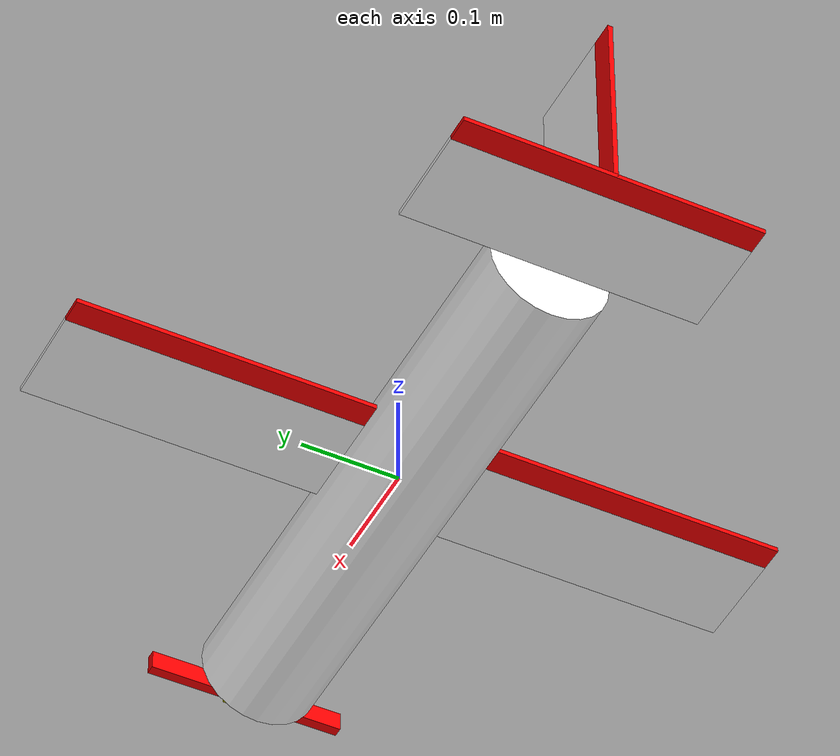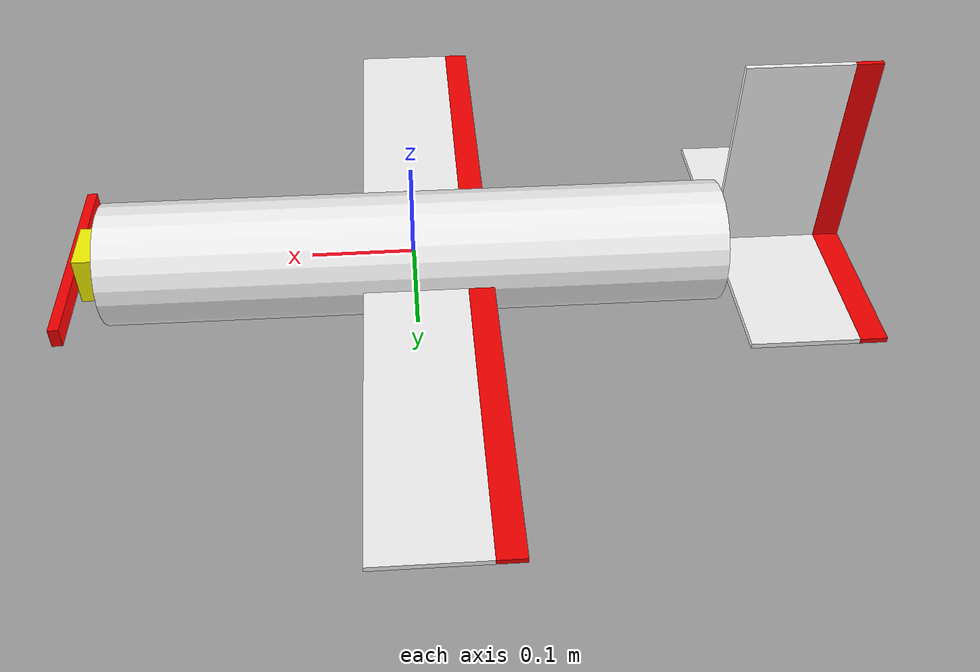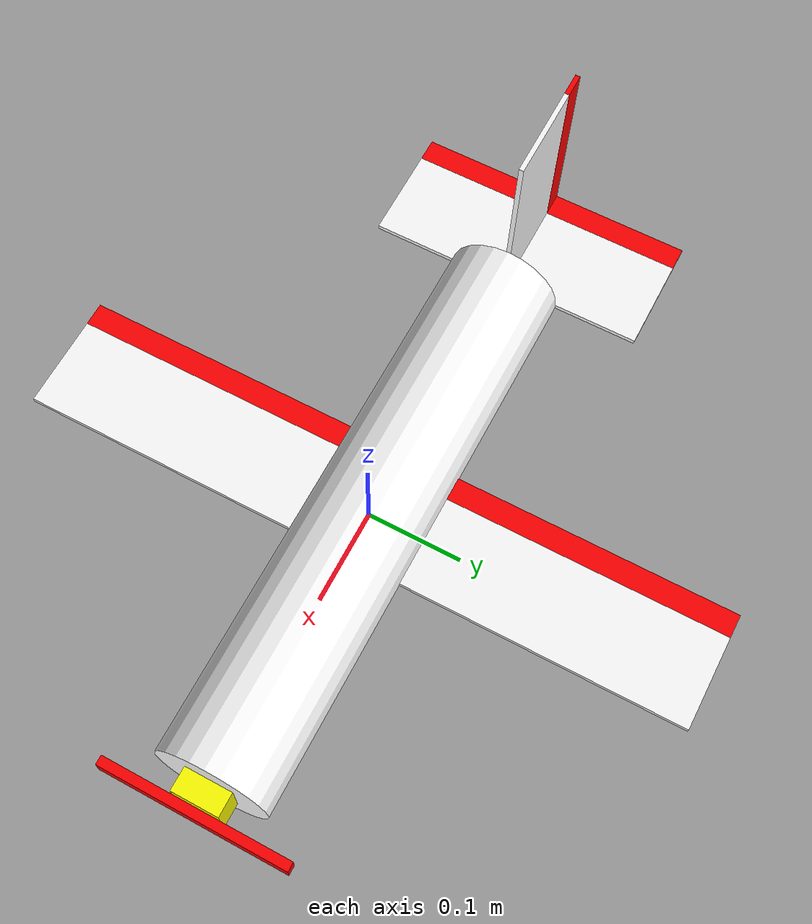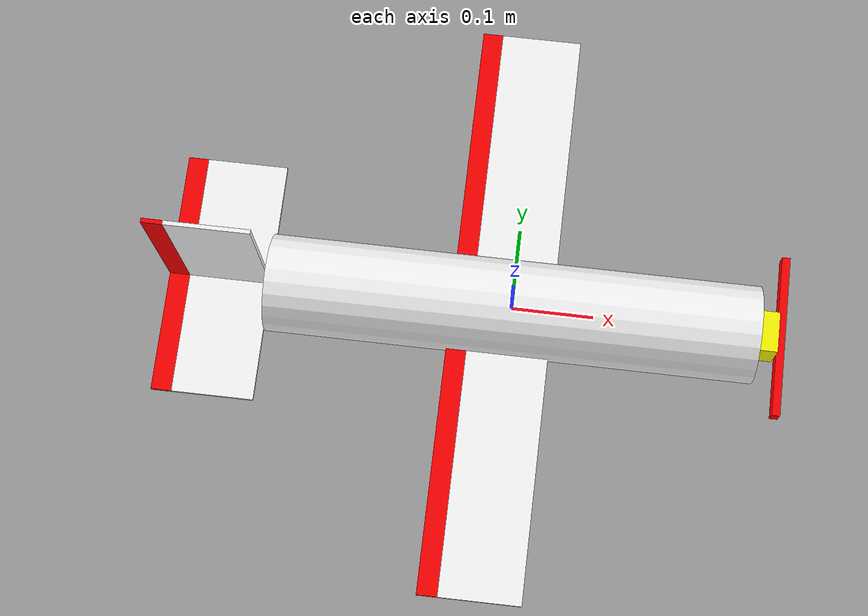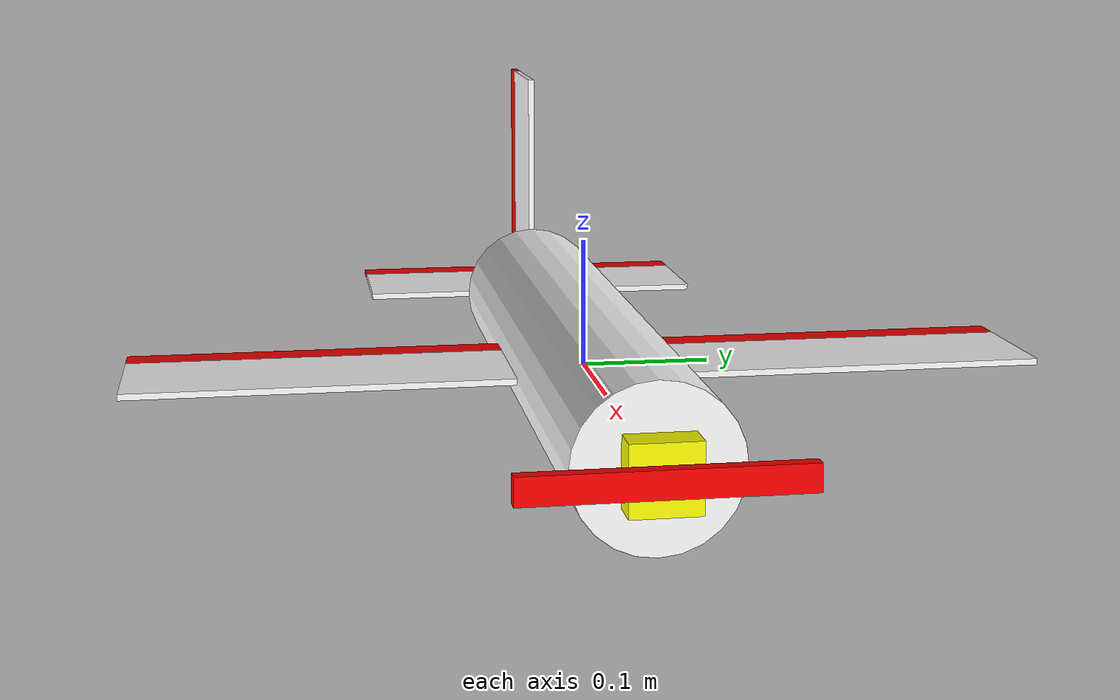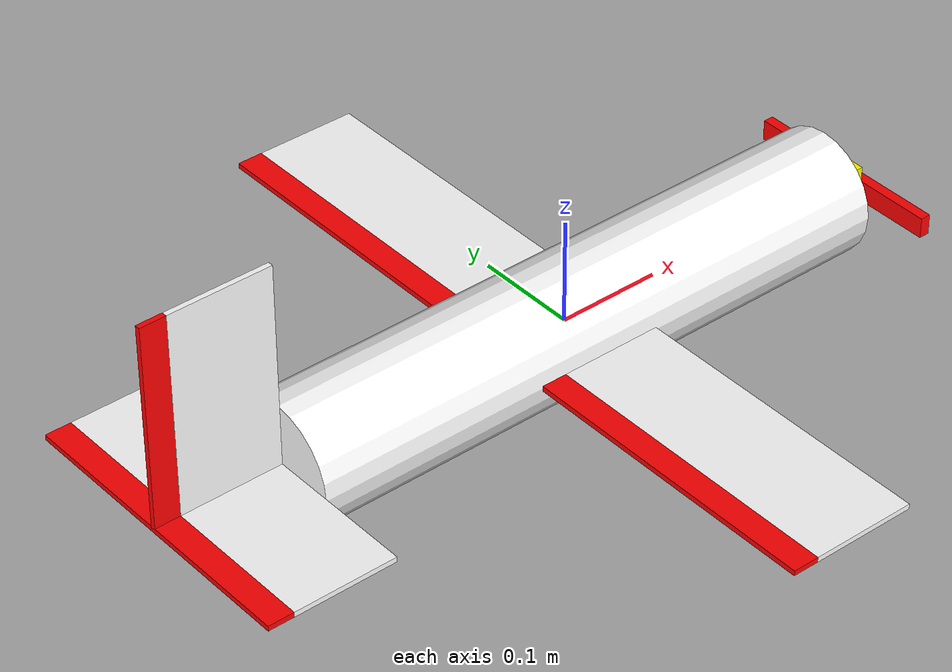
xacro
<?xml version="1.0"?>
<robot name="rc_plane"
  xmlns:xacro="http://www.ros.org/wiki/xacro">

  <xacro:property name="base_length" value="0.6" />
  <xacro:property name="base_radius" value="0.06" />
  <xacro:property name="wing_length" value="0.3" />
  <xacro:property name="wing_width" value="0.1" />

  <material name="white">
    <color rgba="1 1 1 1" />
  </material>
  <material name="red">
    <color rgba="1 0 0 1"/>
  </material>
  <material name="yellow">
    <color rgba="1 1 0 1"/>
  </material>

  <xacro:macro name="wing" params="name length:=0 width:=0">
    <xacro:property name="wing_thickness" value="0.005" />
    <link name="${name}_link">
      <visual>
        <origin xyz="0 0 0" rpy="0 0 0" />
        <geometry>
          <box size="${width} ${length} ${wing_thickness}" />
        </geometry>
        <material name="white" />
      </visual>
    </link>

    <link name="${name}_aileron">
      <visual>
        <origin xyz="${-width/8} 0 0" rpy="0 0 0" />
        <geometry>
          <box size="${width/4} ${length} ${wing_thickness}" />
        </geometry>
        <material name="red" />
      </visual>
    </link>

    <joint name="${name}_aileron_joint" type="revolute">
      <parent link="${name}_link" />
      <child link="${name}_aileron" />
      <origin xyz="${-width/2} 0 0" rpy="0 0 0" />
      <axis xyz="0 1 0"/>
      <limit effort="1000.0" lower="${-pi/2}" upper="${pi/2}" velocity="0.5"/>
    </joint>
  </xacro:macro>

  <xacro:macro name="engine" params="name">
    <xacro:property name="wing_thickness" value="0.005" />
    <link name="${name}_link">
      <visual>
        <origin xyz="0 0 0" rpy="0 0 0" />
        <geometry>
          <box size="0.05 0.05 0.05" />
        </geometry>
        <material name="yellow" />
      </visual>
    </link>

    <link name="${name}_propeller">
      <visual>
        <origin xyz="0 0 0" rpy="0 0 0" />
        <geometry>
          <box size="0.01 0.2 0.02" />
        </geometry>
        <material name="red" />
      </visual>
    </link>

    <joint name="${name}_propeller_joint" type="continuous">
      <parent link="${name}_link" />
      <child link="${name}_propeller" />
      <origin xyz="0.03 0 0" rpy="0 0 0" />
      <axis xyz="1 0 0"/>
    </joint>
  </xacro:macro>

  <link name="base_link">
    <visual>
      <origin xyz="0 0 0" rpy="0 ${pi/2} 0" />
      <geometry>
        <cylinder length="${base_length}" radius="${base_radius}"/>
      </geometry>
      <material name="white" />
    </visual>
  </link>

  <xacro:wing name="right_wing" length="${wing_length}" width="${wing_width}" />

  <joint name="right_wing_joint" type="fixed">
    <parent link="base_link"/>
    <child link="right_wing_link"/>
    <origin xyz="0 ${-wing_length/2-base_radius} 0" rpy="0 0 0" />
  </joint>

  <xacro:wing name="left_wing" length="${wing_length}" width="${wing_width}" />

  <joint name="left_wing_joint" type="fixed">
    <parent link="base_link"/>
    <child link="left_wing_link"/>
    <origin xyz="0 ${wing_length/2+base_radius} 0" rpy="0 0 0" />
  </joint>

  <xacro:wing name="horizontal_stabilizer" length="0.3" width="0.1" />

  <joint name="horizontal_stabilizer_joint" type="fixed">
    <parent link="base_link"/>
    <child link="horizontal_stabilizer_link"/>
    <origin xyz="${-base_length/2-0.05} 0 0" rpy="0 0 0" />
  </joint>

  <xacro:wing name="vertical_stabilizer" length="0.2" width="0.1" />

  <joint name="vertical_stabilizer_joint" type="fixed">
    <parent link="base_link"/>
    <child link="vertical_stabilizer_link"/>
    <origin xyz="${-base_length/2-0.05} 0 0.1" rpy="${pi/2} 0 0" />
  </joint>

  <xacro:engine name="front_engine" />

  <joint name="front_engine_joint" type="fixed">
    <parent link="base_link"/>
    <child link="front_engine_link"/>
    <origin xyz="${base_length/2} 0 0" rpy="0 0 0" />
  </joint>

</robot>
